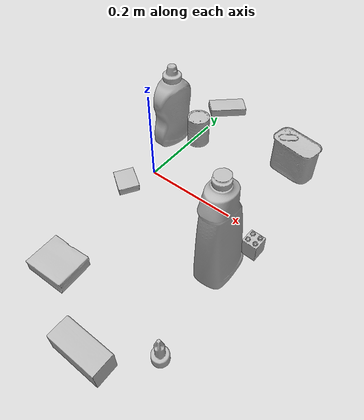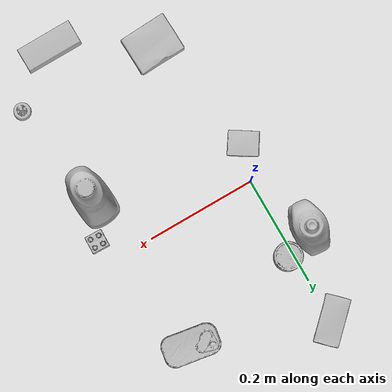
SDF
<sdf version="1.4">
  <world name="default">
    <light name="light1" type="point">
      <pose>0 0 1 0 0 0</pose>
      <diffuse>3 3 3 1</diffuse>
      <specular>3 3 3 1</specular>
    </light>
    <light name="light2" type="point">
      <pose>0 0.5 2 0 0 0</pose>
      <diffuse>1 1 1 1</diffuse>
      <specular>1 1 1 1</specular>
    </light>
    <light name="light3" type="point">
      <pose>0 0.5 2 0 0 0</pose>
      <diffuse>3 3 3 1</diffuse>
      <specular>3 3 3 1</specular>
    </light>
    <scene>
      <ambient>0.7 0.7 0.7</ambient>
    </scene>
    <model name="bottle1">
      <link name="link_bottle1">
        <collision name="default">
          <geometry>
            <mesh>
              <uri>model://bleach_cleanser/collision_meshes/collision.obj</uri>
              <scale>1.0 1.0 1.0</scale>
            </mesh>
          </geometry>
          <surface>
            <friction>
              <ode>
                <mu>0.5</mu>
                <mu2>0.5</mu2>
              </ode>
            </friction>
          <contact>
        <ode>
            <max_vel>0</max_vel>
            <min_depth>0.0001</min_depth>
            <kp>1e8</kp>
        </ode>
    </contact></surface>
        </collision>
        <visual name="default">
          <geometry>
            <mesh>
              <uri>model://bleach_cleanser/visual_meshes/visual.dae</uri>
              <scale>1.0 1.0 1.0</scale>
            </mesh>
          </geometry>
        </visual>
        <inertial>
          <mass>1.578364610671997</mass>
          <pose>0.00012193182919872925 0.003783882362768054 -0.024421613663434982 -0.07381669869228723 0.000420116582496686 -0.006875050642452563</pose>
          <inertia>
            <ixx>0.00768213</ixx>
            <iyy>0.0071586203</iyy>
            <izz>0.0013134446</izz>
            <ixy>0</ixy>
            <ixz>0</ixz>
            <iyz>0</iyz>
          </inertia>
        </inertial>
      </link>
      <pose>0.25290587544441223 -0.11277426779270172 0.12577426433563232 -0.00107331253908109 0.0013938539845823657 -3.061950167173892</pose>
    </model>
    <model name="bottle2">
      <link name="link_bottle2">
        <collision name="default">
          <geometry>
            <mesh>
              <uri>model://mustard_bottle/collision_meshes/collision.obj</uri>
              <scale>1.0 1.0 1.0</scale>
            </mesh>
          </geometry>
          <surface>
            <friction>
              <ode>
                <mu>0.5</mu>
                <mu2>0.5</mu2>
              </ode>
            </friction>
          <contact>
        <ode>
            <max_vel>0</max_vel>
            <min_depth>0.0001</min_depth>
            <kp>1e8</kp>
        </ode>
    </contact></surface>
        </collision>
        <visual name="default">
          <geometry>
            <mesh>
              <uri>model://mustard_bottle/visual_meshes/visual.dae</uri>
              <scale>1.0 1.0 1.0</scale>
            </mesh>
          </geometry>
        </visual>
        <inertial>
          <mass>0.5896905064582825</mass>
          <pose>0.000503245391882956 -0.00015647403779439628 -0.0174757931381464 0.00041823284967905286 0.0009465779461724547 0.024853724225743102</pose>
          <inertia>
            <ixx>0.00163749</ixx>
            <iyy>0.0014367587</iyy>
            <izz>0.00043156123</izz>
            <ixy>0</ixy>
            <ixz>0</ixz>
            <iyz>0</iyz>
          </inertia>
        </inertial>
      </link>
      <pose>-0.0451427586376667 0.12162283807992935 0.09583088010549545 -0.012050269426721544 -0.004890093270636342 -0.10025036853037451</pose>
    </model>
    <model name="toy1">
      <link name="link_toy1">
        <collision name="default">
          <geometry>
            <mesh>
              <uri>model://b_lego_duplo/collision_meshes/collision.obj</uri>
              <scale>1.0 1.0 1.0</scale>
            </mesh>
          </geometry>
          <surface>
            <friction>
              <ode>
                <mu>0.5</mu>
                <mu2>0.5</mu2>
              </ode>
            </friction>
          <contact>
        <ode>
            <max_vel>0</max_vel>
            <min_depth>0.0001</min_depth>
            <kp>1e8</kp>
        </ode>
    </contact></surface>
        </collision>
        <visual name="default">
          <geometry>
            <mesh>
              <uri>model://b_lego_duplo/visual_meshes/visual.dae</uri>
              <scale>1.0 1.0 1.0</scale>
            </mesh>
          </geometry>
        </visual>
        <inertial>
          <mass>0.04927889630198479</mass>
          <pose>-0.00011053016351070255 -9.152428901870735e-06 0.0019294293597340584 -0.03749545918935276 -0.026353596882306905 0.4519115393215097</pose>
          <inertia>
            <ixx>1.0085294e-05</ixx>
            <iyy>1.015309e-05</iyy>
            <izz>8.985672e-06</izz>
            <ixy>0</ixy>
            <ixz>0</ixz>
            <iyz>0</iyz>
          </inertia>
        </inertial>
      </link>
      <pose>0.28320881724357605 -0.04347129911184311 0.02181498520076275 1.0355344488698548e-05 6.534410409045974e-06 3.1128932871792356</pose>
    </model>
    <model name="toy2">
      <link name="link_toy2">
        <collision name="default">
          <geometry>
            <mesh>
              <uri>model://d_toy_airplane/collision_meshes/collision.obj</uri>
              <scale>1.0 1.0 1.0</scale>
            </mesh>
          </geometry>
          <surface>
            <friction>
              <ode>
                <mu>0.5</mu>
                <mu2>0.5</mu2>
              </ode>
            </friction>
          <contact>
        <ode>
            <max_vel>0</max_vel>
            <min_depth>0.0001</min_depth>
            <kp>1e8</kp>
        </ode>
    </contact></surface>
        </collision>
        <visual name="default">
          <geometry>
            <mesh>
              <uri>model://d_toy_airplane/visual_meshes/visual.dae</uri>
              <scale>1.0 1.0 1.0</scale>
            </mesh>
          </geometry>
        </visual>
        <inertial>
          <mass>0.023543989285826683</mass>
          <pose>9.41029647947289e-05 -5.8093268307857215e-05 -0.011728093028068542 0.0002670074791080515 0.004678977428991067 0.5194709842729006</pose>
          <inertia>
            <ixx>7.058034e-06</ixx>
            <iyy>7.063356e-06</iyy>
            <izz>2.1308651e-06</izz>
            <ixy>0</ixy>
            <ixz>0</ixz>
            <iyz>0</iyz>
          </inertia>
        </inertial>
      </link>
      <pose>0.28156763315200806 -0.3057166039943695 0.03333902731537819 -3.1806204500125553e-05 -7.441281305754212e-05 3.063226532198195</pose>
    </model>
    <model name="can1">
      <link name="link_can1">
        <collision name="default">
          <geometry>
            <mesh>
              <uri>model://master_chef_can/collision_meshes/collision.obj</uri>
              <scale>0.5 0.5 0.5</scale>
            </mesh>
          </geometry>
          <surface>
            <friction>
              <ode>
                <mu>0.5</mu>
                <mu2>0.5</mu2>
              </ode>
            </friction>
          <contact>
        <ode>
            <max_vel>0</max_vel>
            <min_depth>0.0001</min_depth>
            <kp>1e8</kp>
        </ode>
    </contact></surface>
        </collision>
        <visual name="default">
          <geometry>
            <mesh>
              <uri>model://master_chef_can/visual_meshes/visual.dae</uri>
              <scale>0.5 0.5 0.5</scale>
            </mesh>
          </geometry>
        </visual>
        <inertial>
          <mass>0.13489052653312683</mass>
          <pose>-4.6619643399026245e-05 1.392684936263322e-07 -5.080000119050965e-05 -0.0017995055981966167 0.0006479432683086387 -0.6102521024359563</pose>
          <inertia>
            <ixx>7.9171594e-05</ixx>
            <iyy>7.85889e-05</iyy>
            <izz>4.3748354e-05</izz>
            <ixy>0</ixy>
            <ixz>0</ixz>
            <iyz>0</iyz>
          </inertia>
        </inertial>
      </link>
      <pose>0.01075364276766777 0.14600424468517303 0.035301998257637024 -1.6737372252046137e-06 -1.1078124691778016e-06 -0.25918668923643856</pose>
    </model>
    <model name="can2">
      <link name="link_can2">
        <collision name="default">
          <geometry>
            <mesh>
              <uri>model://potted_meat_can/collision_meshes/collision.obj</uri>
              <scale>1.0 1.0 1.0</scale>
            </mesh>
          </geometry>
          <surface>
            <friction>
              <ode>
                <mu>0.5</mu>
                <mu2>0.5</mu2>
              </ode>
            </friction>
          <contact>
        <ode>
            <max_vel>0</max_vel>
            <min_depth>0.0001</min_depth>
            <kp>1e8</kp>
        </ode>
    </contact></surface>
        </collision>
        <visual name="default">
          <geometry>
            <mesh>
              <uri>model://potted_meat_can/visual_meshes/visual.dae</uri>
              <scale>1.0 1.0 1.0</scale>
            </mesh>
          </geometry>
        </visual>
        <inertial>
          <mass>0.4512253701686859</mass>
          <pose>0.00022888150124344975 -5.9891150158364326e-05 -0.0006367433816194534 -0.028093371406289817 -0.007232609295346345 0.015406271951796056</pose>
          <inertia>
            <ixx>0.00058045425</ixx>
            <iyy>0.00035267006</iyy>
            <izz>0.00042216998</izz>
            <ixy>0</ixy>
            <ixz>0</ixz>
            <iyz>0</iyz>
          </inertia>
        </inertial>
      </link>
      <pose>0.23345673084259033 0.19322612881660461 0.042128000408411026 -1.786675625020006e-07 -2.945309768364345e-07 -1.7426432813268933</pose>
    </model>
    <model name="box1">
      <link name="link_box1">
        <collision name="default">
          <geometry>
            <mesh>
              <uri>model://pudding_box/collision_meshes/collision.obj</uri>
              <scale>0.5 0.5 0.5</scale>
            </mesh>
          </geometry>
          <surface>
            <friction>
              <ode>
                <mu>0.5</mu>
                <mu2>0.5</mu2>
              </ode>
            </friction>
          <contact>
        <ode>
            <max_vel>0</max_vel>
            <min_depth>0.0001</min_depth>
            <kp>1e8</kp>
        </ode>
    </contact></surface>
        </collision>
        <visual name="default">
          <geometry>
            <mesh>
              <uri>model://pudding_box/visual_meshes/visual.dae</uri>
              <scale>0.5 0.5 0.5</scale>
            </mesh>
          </geometry>
        </visual>
        <inertial>
          <mass>0.02510015107691288</mass>
          <pose>0.00024474109522998333 0.0004033942532259971 -0.0002594413817860186 0.005213101332996491 -0.0066037987089797995 0.020079823298230236</pose>
          <inertia>
            <ixx>7.093607e-06</ixx>
            <iyy>4.7726294e-06</iyy>
            <izz>1.04755645e-05</izz>
            <ixy>0</ixy>
            <ixz>0</ixz>
            <iyz>0</iyz>
          </inertia>
        </inertial>
      </link>
      <pose>-0.022430075332522392 -0.06351147592067719 0.009862902574241161 0.022348144468605058 -0.011391920259384306 0.9967495513961994</pose>
    </model>
    <model name="box2">
      <link name="link_box2">
        <collision name="default">
          <geometry>
            <mesh>
              <uri>model://gelatin_box/collision_meshes/collision.obj</uri>
              <scale>1.0 1.0 1.0</scale>
            </mesh>
          </geometry>
          <surface>
            <friction>
              <ode>
                <mu>0.5</mu>
                <mu2>0.5</mu2>
              </ode>
            </friction>
          <contact>
        <ode>
            <max_vel>0</max_vel>
            <min_depth>0.0001</min_depth>
            <kp>1e8</kp>
        </ode>
    </contact></surface>
        </collision>
        <visual name="default">
          <geometry>
            <mesh>
              <uri>model://gelatin_box/visual_meshes/visual.dae</uri>
              <scale>1.0 1.0 1.0</scale>
            </mesh>
          </geometry>
        </visual>
        <inertial>
          <mass>0.2452477514743805</mass>
          <pose>0.000431961816502735 0.00011156871187267825 -0.0003640321083366871 -0.0010503720803081407 -0.004755818225601415 0.01644055574590794</pose>
          <inertia>
            <ixx>0.0001731249</ixx>
            <iyy>0.0001236622</iyy>
            <izz>0.00026353472</izz>
            <ixy>0</ixy>
            <ixz>0</ixz>
            <iyz>0</iyz>
          </inertia>
        </inertial>
      </link>
      <pose>0.02712603285908699 -0.29212379455566406 0.01516831573098898 0.005596644814810927 -0.007303663580852475 1.6018896016699649</pose>
    </model>
    <model name="box3">
      <link name="link_box3">
        <collision name="default">
          <geometry>
            <mesh>
              <uri>model://sugar_box/collision_meshes/collision.obj</uri>
              <scale>0.5 0.5 0.5</scale>
            </mesh>
          </geometry>
          <surface>
            <friction>
              <ode>
                <mu>0.5</mu>
                <mu2>0.5</mu2>
              </ode>
            </friction>
          <contact>
        <ode>
            <max_vel>0</max_vel>
            <min_depth>0.0001</min_depth>
            <kp>1e8</kp>
        </ode>
    </contact></surface>
        </collision>
        <visual name="default">
          <geometry>
            <mesh>
              <uri>model://sugar_box/visual_meshes/visual.dae</uri>
              <scale>0.5 0.5 0.5</scale>
            </mesh>
          </geometry>
        </visual>
        <inertial>
          <mass>0.12277840822935104</mass>
          <pose>0.0005171863595023751 1.9245549992774613e-05 -0.00018182402709499002 -0.0004046257474220826 0.0010506635214397083 0.0026153787892127145</pose>
          <inertia>
            <ixx>2.5574656e-05</ixx>
            <iyy>8.2662555e-05</iyy>
            <izz>9.895694e-05</izz>
            <ixy>0</ixy>
            <ixz>0</ixz>
            <iyz>0</iyz>
          </inertia>
        </inertial>
      </link>
      <pose>0.000393111229641363 0.28032180666923523 0.011399306356906891 0.0007752499023542936 -0.02343324156017618 -2.3682735759635865</pose>
    </model>
    <model name="box4">
      <link name="link_box4">
        <collision name="default">
          <geometry>
            <mesh>
              <uri>model://wood_block/collision_meshes/collision.obj</uri>
              <scale>0.5 0.5 0.5</scale>
            </mesh>
          </geometry>
          <surface>
            <friction>
              <ode>
                <mu>0.5</mu>
                <mu2>0.5</mu2>
              </ode>
            </friction>
          <contact>
        <ode>
            <max_vel>0</max_vel>
            <min_depth>0.0001</min_depth>
            <kp>1e8</kp>
        </ode>
    </contact></surface>
        </collision>
        <visual name="default">
          <geometry>
            <mesh>
              <uri>model://wood_block/visual_meshes/visual.dae</uri>
              <scale>0.5 0.5 0.5</scale>
            </mesh>
          </geometry>
        </visual>
        <inertial>
          <mass>0.2967980206012726</mass>
          <pose>-2.9066577553749084e-06 -0.00028540470520965755 0.00013204291462898254 -0.05220902064674581 -0.005192696668457315 -0.006861378272965977</pose>
          <inertia>
            <ixx>9.929016e-05</ixx>
            <iyy>0.00031365763</iyy>
            <izz>0.00031248436</izz>
            <ixy>0</ixy>
            <ixz>0</ixz>
            <iyz>0</iyz>
          </inertia>
        </inertial>
      </link>
      <pose>0.1841161549091339 -0.37796053290367126 0.022629262879490852 -0.005208516030439219 0.005718660508909213 -3.136649563161018</pose>
    </model>
  <physics type="ode">
      <max_contacts>50</max_contacts>
      <ode>
        <solver>
          <type>quick</type>
          <iters>75</iters>
        </solver>
        <constraints>
          <contact_max_correcting_vel>0</contact_max_correcting_vel>
          <contact_surface_layer>0</contact_surface_layer>
        </constraints>
      </ode>
    </physics></world>
</sdf>
